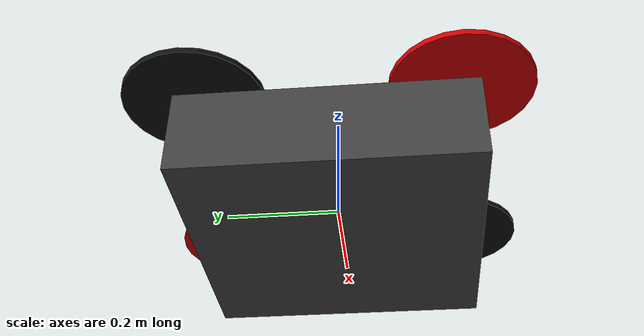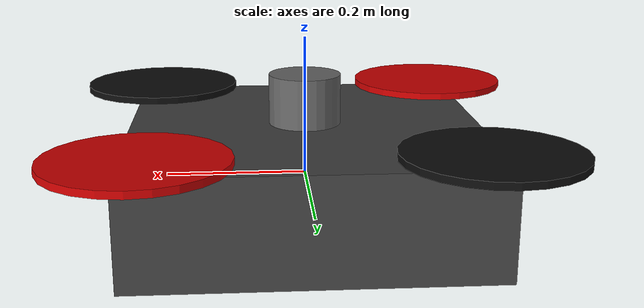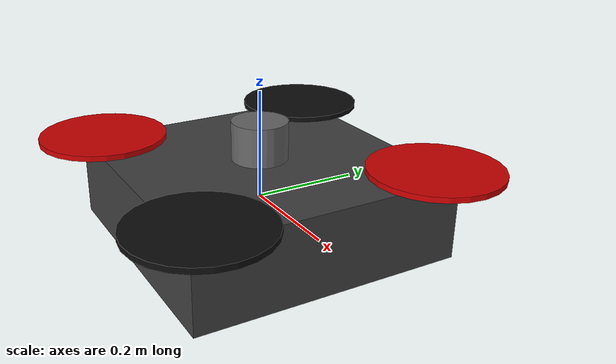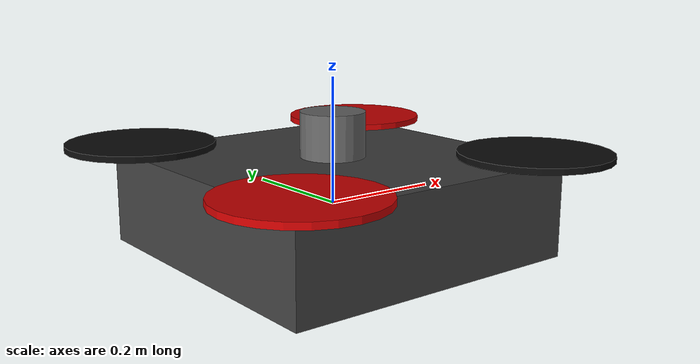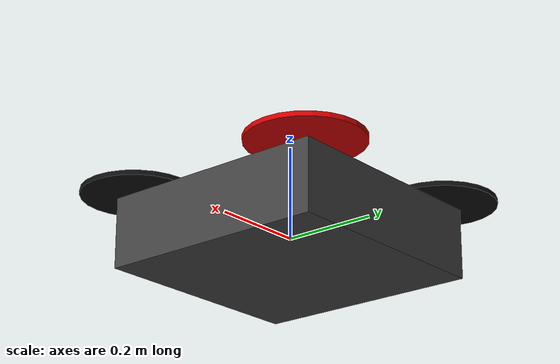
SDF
<?xml version="1.0"?>
<sdf version="1.9">
  <model name="cave_drone">
    <static>false</static>
    <self_collide>false</self_collide>

    <!-- ================================================================
         BASE LINK
         ================================================================ -->
    <link name="base_link">
      <pose>0 0 0 0 0 0</pose>

      <inertial>
        <mass>1.5</mass>
        <pose>0 0 0 0 0 0</pose>
        <!-- Solid box: Ixx = m(y²+z²)/12 -->
        <inertia>
          <ixx>0.032500</ixx>
          <ixy>0</ixy>
          <ixz>0</ixz>
          <iyy>0.032500</iyy>
          <iyz>0</iyz>
          <izz>0.062500</izz>
        </inertia>
      </inertial>

      <collision name="base_collision">
        <pose>0 0 0 0 0 0</pose>
        <geometry>
          <box><size>0.5 0.5 0.15</size></box>
        </geometry>
        <surface>
          <contact><ode/></contact>
          <friction><ode><mu>0.6</mu><mu2>0.6</mu2></ode></friction>
        </surface>
      </collision>

      <visual name="base_visual">
        <pose>0 0 0 0 0 0</pose>
        <geometry>
          <box><size>0.5 0.5 0.15</size></box>
        </geometry>
        <material>
          <ambient>0.25 0.25 0.25 1</ambient>
          <diffuse>0.25 0.25 0.25 1</diffuse>
          <specular>0.05 0.05 0.05 1</specular>
          <emissive>0 0 0 1</emissive>
        </material>
      </visual>
    </link>

    <!-- ================================================================
         ROTORS
         ================================================================ -->

    <!-- Rotor 0 — front-right, red -->
    <link name="rotor_0">
      <pose>0.22 0.22 0.086 0 0 0</pose>
      <inertial>
        <mass>0.05</mass>
        <inertia>
          <ixx>0.000072</ixx>
          <ixy>0</ixy><ixz>0</ixz>
          <iyy>0.000072</iyy>
          <iyz>0</iyz>
          <izz>0.000036</izz>
        </inertia>
      </inertial>
      <collision name="rotor_0_collision">
        <geometry><cylinder><radius>0.12</radius><length>0.01</length></cylinder></geometry>
      </collision>
      <visual name="rotor_0_visual">
        <geometry><cylinder><radius>0.12</radius><length>0.01</length></cylinder></geometry>
        <material>
          <ambient>0.8 0.0 0.0 1</ambient>
          <diffuse>0.8 0.0 0.0 1</diffuse>
        </material>
      </visual>
    </link>
    <joint name="rotor_0_joint" type="revolute">
      <parent>base_link</parent>
      <child>rotor_0</child>
      <pose>0 0 0 0 0 0</pose>
      <axis>
        <xyz>0 0 1</xyz>
        <dynamics><damping>0.001</damping><friction>0.001</friction></dynamics>
        <limit><lower>-1e16</lower><upper>1e16</upper></limit>
      </axis>
    </joint>

    <!-- Rotor 1 — rear-left, red -->
    <link name="rotor_1">
      <pose>-0.22 -0.22 0.086 0 0 0</pose>
      <inertial>
        <mass>0.05</mass>
        <inertia>
          <ixx>0.000072</ixx><ixy>0</ixy><ixz>0</ixz>
          <iyy>0.000072</iyy><iyz>0</iyz>
          <izz>0.000036</izz>
        </inertia>
      </inertial>
      <collision name="rotor_1_collision">
        <geometry><cylinder><radius>0.12</radius><length>0.01</length></cylinder></geometry>
      </collision>
      <visual name="rotor_1_visual">
        <geometry><cylinder><radius>0.12</radius><length>0.01</length></cylinder></geometry>
        <material>
          <ambient>0.8 0.0 0.0 1</ambient>
          <diffuse>0.8 0.0 0.0 1</diffuse>
        </material>
      </visual>
    </link>
    <joint name="rotor_1_joint" type="revolute">
      <parent>base_link</parent><child>rotor_1</child>
      <axis>
        <xyz>0 0 1</xyz>
        <dynamics><damping>0.001</damping><friction>0.001</friction></dynamics>
        <limit><lower>-1e16</lower><upper>1e16</upper></limit>
      </axis>
    </joint>

    <!-- Rotor 2 — front-left, black -->
    <link name="rotor_2">
      <pose>0.22 -0.22 0.086 0 0 0</pose>
      <inertial>
        <mass>0.05</mass>
        <inertia>
          <ixx>0.000072</ixx><ixy>0</ixy><ixz>0</ixz>
          <iyy>0.000072</iyy><iyz>0</iyz>
          <izz>0.000036</izz>
        </inertia>
      </inertial>
      <collision name="rotor_2_collision">
        <geometry><cylinder><radius>0.12</radius><length>0.01</length></cylinder></geometry>
      </collision>
      <visual name="rotor_2_visual">
        <geometry><cylinder><radius>0.12</radius><length>0.01</length></cylinder></geometry>
        <material>
          <ambient>0.05 0.05 0.05 1</ambient>
          <diffuse>0.05 0.05 0.05 1</diffuse>
        </material>
      </visual>
    </link>
    <joint name="rotor_2_joint" type="revolute">
      <parent>base_link</parent><child>rotor_2</child>
      <axis>
        <xyz>0 0 1</xyz>
        <dynamics><damping>0.001</damping><friction>0.001</friction></dynamics>
        <limit><lower>-1e16</lower><upper>1e16</upper></limit>
      </axis>
    </joint>

    <!-- Rotor 3 — rear-right, black -->
    <link name="rotor_3">
      <pose>-0.22 0.22 0.086 0 0 0</pose>
      <inertial>
        <mass>0.05</mass>
        <inertia>
          <ixx>0.000072</ixx><ixy>0</ixy><ixz>0</ixz>
          <iyy>0.000072</iyy><iyz>0</iyz>
          <izz>0.000036</izz>
        </inertia>
      </inertial>
      <collision name="rotor_3_collision">
        <geometry><cylinder><radius>0.12</radius><length>0.01</length></cylinder></geometry>
      </collision>
      <visual name="rotor_3_visual">
        <geometry><cylinder><radius>0.12</radius><length>0.01</length></cylinder></geometry>
        <material>
          <ambient>0.05 0.05 0.05 1</ambient>
          <diffuse>0.05 0.05 0.05 1</diffuse>
        </material>
      </visual>
    </link>
    <joint name="rotor_3_joint" type="revolute">
      <parent>base_link</parent><child>rotor_3</child>
      <axis>
        <xyz>0 0 1</xyz>
        <dynamics><damping>0.001</damping><friction>0.001</friction></dynamics>
        <limit><lower>-1e16</lower><upper>1e16</upper></limit>
      </axis>
    </joint>

    <!-- ================================================================
         LiDAR LINK  (Velodyne VLP-16 style, 3D)
         ================================================================ -->
    <link name="lidar_link">
      <pose>0 0 0.111 0 0 0</pose>  <!-- body_z/2 + 0.036 = 0.075 + 0.036 -->
      <inertial>
        <mass>0.83</mass>
        <inertia>
          <ixx>0.001226</ixx><ixy>0</ixy><ixz>0</ixz>
          <iyy>0.001226</iyy><iyz>0</iyz>
          <izz>0.001108</izz>
        </inertia>
      </inertial>
      <collision name="lidar_collision">
        <geometry><cylinder><radius>0.0516</radius><length>0.0717</length></cylinder></geometry>
      </collision>
      <visual name="lidar_visual">
        <geometry><cylinder><radius>0.0516</radius><length>0.0717</length></cylinder></geometry>
        <material>
          <ambient>0.4 0.4 0.4 1</ambient>
          <diffuse>0.4 0.4 0.4 1</diffuse>
        </material>
      </visual>

      <!-- gpu_lidar sensor — Gazebo Harmonic -->
      <sensor name="lidar" type="gpu_lidar">
        <update_rate>10</update_rate>
        <topic>/drone/lidar/points</topic>
        <gz_frame_id>lidar_link</gz_frame_id>
        <lidar>
          <scan>
            <horizontal>
              <samples>1800</samples>
              <resolution>1</resolution>
              <min_angle>-3.14159265</min_angle>
              <max_angle> 3.14159265</max_angle>
            </horizontal>
            <vertical>
              <samples>16</samples>
              <resolution>1</resolution>
              <min_angle>-0.26179939</min_angle>
              <max_angle> 0.26179939</max_angle>
            </vertical>
          </scan>
          <range>
            <min>0.1</min>
            <max>100.0</max>
            <resolution>0.001</resolution>
          </range>
          <noise>
            <type>gaussian</type>
            <mean>0.0</mean>
            <stddev>0.01</stddev>
          </noise>
        </lidar>
        <always_on>true</always_on>
        <visualize>false</visualize>
      </sensor>
    </link>

    <joint name="lidar_joint" type="fixed">
      <parent>base_link</parent>
      <child>lidar_link</child>
    </joint>

    <!-- ================================================================
         DEPTH CAMERA LINK
         ================================================================ -->
    <link name="depth_camera_link">
      <!-- 0.15 m forward, -0.02 m below centre, -10° pitch -->
      <pose>0.15 0 -0.02 0 -0.1745329 0</pose>
      <inertial>
        <mass>0.07</mass>
        <inertia>
          <ixx>0.000004</ixx><ixy>0</ixy><ixz>0</ixz>
          <iyy>0.000004</iyy><iyz>0</iyz>
          <izz>0.000005</izz>
        </inertia>
      </inertial>
      <collision name="depth_cam_collision">
        <geometry><box><size>0.04 0.09 0.025</size></box></geometry>
      </collision>
      <visual name="depth_cam_visual">
        <geometry><box><size>0.04 0.09 0.025</size></box></geometry>
        <material>
          <ambient>0.1 0.1 0.1 1</ambient>
          <diffuse>0.1 0.1 0.1 1</diffuse>
        </material>
      </visual>

      <!-- depth_camera sensor — Gazebo Harmonic -->
      <sensor name="depth_camera" type="depth_camera">
        <update_rate>15</update_rate>
        <topic>/drone/depth_camera</topic>
        <gz_frame_id>depth_camera_link</gz_frame_id>
        <camera>
          <horizontal_fov>1.5184</horizontal_fov>
          <image>
            <width>640</width>
            <height>480</height>
            <format>R_FLOAT32</format>
          </image>
          <clip>
            <near>0.1</near>
            <far>10.0</far>
          </clip>
          <noise>
            <type>gaussian</type>
            <mean>0.0</mean>
            <stddev>0.01</stddev>
          </noise>
        </camera>
        <always_on>true</always_on>
        <visualize>false</visualize>
      </sensor>
    </link>

    <joint name="depth_camera_joint" type="fixed">
      <parent>base_link</parent>
      <child>depth_camera_link</child>
    </joint>

    <!-- ================================================================
         IMU LINK
         ================================================================ -->
    <link name="imu_link">
      <pose>0 0 0 0 0 0</pose>
      <inertial>
        <mass>0.015</mass>
        <inertia>
          <ixx>0.0000005</ixx><ixy>0</ixy><ixz>0</ixz>
          <iyy>0.0000005</iyy><iyz>0</iyz>
          <izz>0.0000005</izz>
        </inertia>
      </inertial>
      <collision name="imu_collision">
        <geometry><box><size>0.02 0.02 0.01</size></box></geometry>
      </collision>
      <visual name="imu_visual">
        <geometry><box><size>0.02 0.02 0.01</size></box></geometry>
        <material>
          <ambient>0.0 0.8 0.0 1</ambient>
          <diffuse>0.0 0.8 0.0 1</diffuse>
        </material>
      </visual>

      <!-- imu sensor — Gazebo Harmonic -->
      <sensor name="imu" type="imu">
        <update_rate>200</update_rate>
        <topic>/drone/imu</topic>
        <gz_frame_id>imu_link</gz_frame_id>
        <imu>
          <angular_velocity>
            <x><noise type="gaussian"><mean>0</mean><stddev>0.01</stddev><bias_mean>0</bias_mean><bias_stddev>0.001</bias_stddev></noise></x>
            <y><noise type="gaussian"><mean>0</mean><stddev>0.01</stddev><bias_mean>0</bias_mean><bias_stddev>0.001</bias_stddev></noise></y>
            <z><noise type="gaussian"><mean>0</mean><stddev>0.01</stddev><bias_mean>0</bias_mean><bias_stddev>0.001</bias_stddev></noise></z>
          </angular_velocity>
          <linear_acceleration>
            <x><noise type="gaussian"><mean>0</mean><stddev>0.1</stddev><bias_mean>0</bias_mean><bias_stddev>0.01</bias_stddev></noise></x>
            <y><noise type="gaussian"><mean>0</mean><stddev>0.1</stddev><bias_mean>0</bias_mean><bias_stddev>0.01</bias_stddev></noise></y>
            <z><noise type="gaussian"><mean>0</mean><stddev>0.1</stddev><bias_mean>0</bias_mean><bias_stddev>0.01</bias_stddev></noise></z>
          </linear_acceleration>
        </imu>
        <always_on>true</always_on>
      </sensor>
    </link>

    <joint name="imu_joint" type="fixed">
      <parent>base_link</parent>
      <child>imu_link</child>
    </joint>

    <!-- ================================================================
         PLUGINS
         ================================================================ -->
    <plugin
      filename="gz-sim-apply-link-wrench-system"
      name="gz::sim::systems::ApplyLinkWrench">
    </plugin>

  </model>
</sdf>
